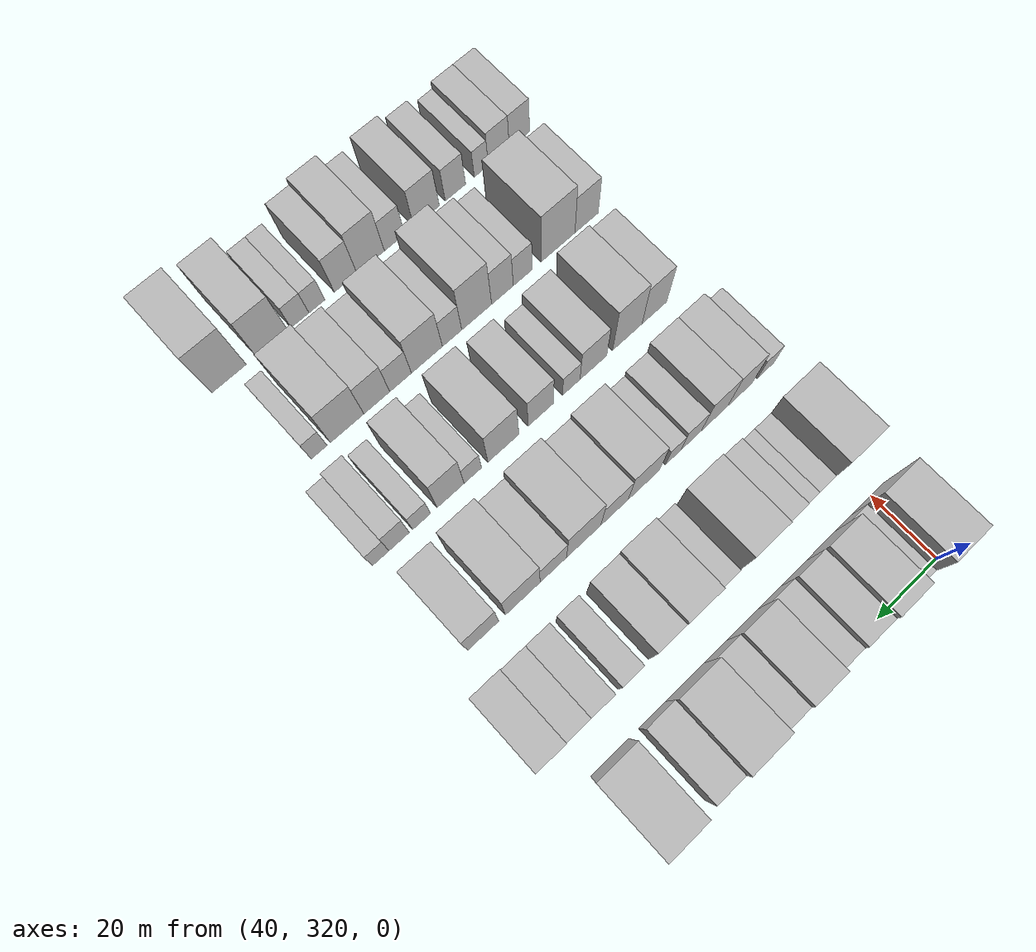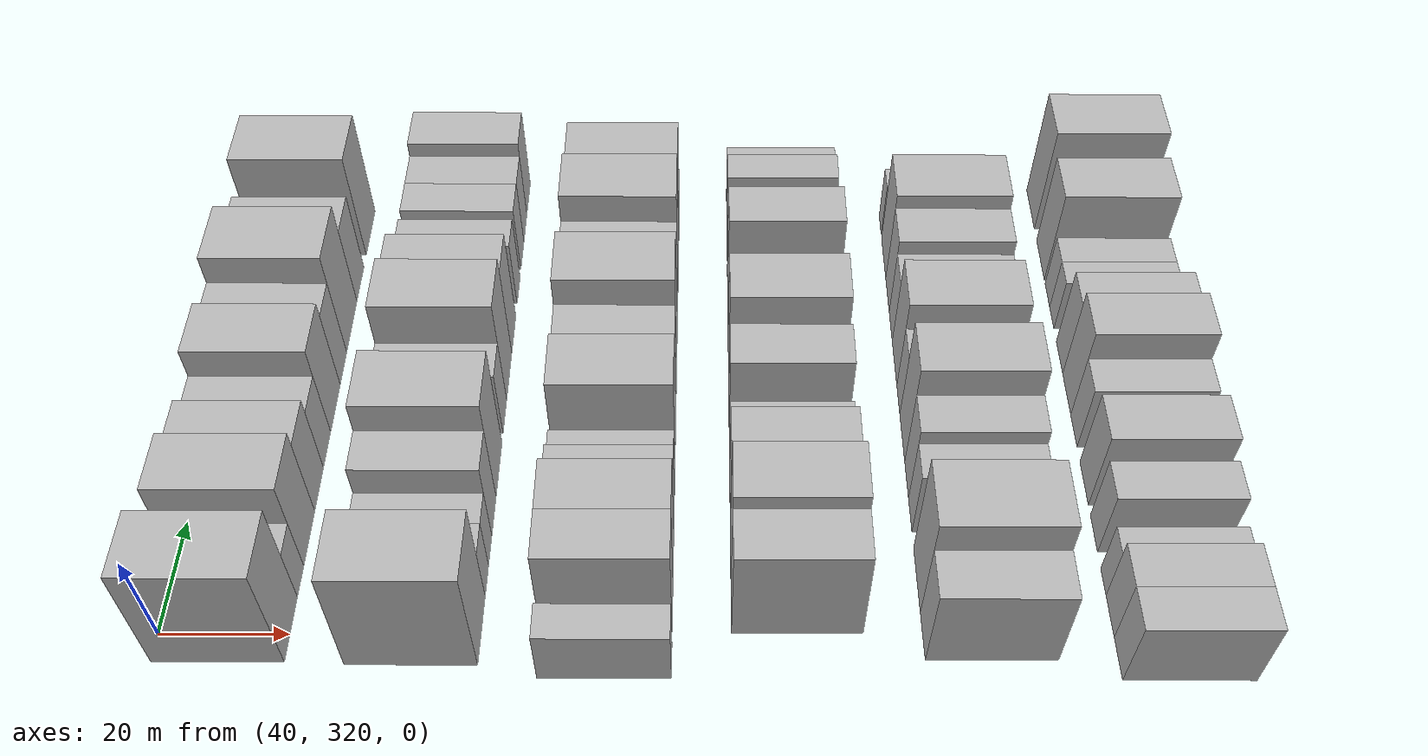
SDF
<sdf version="1.6">
 <world name="default">
  <model name="building_89">
   <static>1</static>
   <pose>50.0000 320.8935 0 0.000000 0.000000 0.000000</pose>
   <link name="link">
    <pose>0 0 12.00 0 0 0</pose>
    <collision name="collision"><geometry><box><size>20.0000 11.1456 24.0000</size></box></geometry></collision>
    <visual name="visual">
     <cast_shadows>0</cast_shadows>
     <geometry><box><size>20.0000 11.1456 24.0000</size></box></geometry>
     <material>
      <script>
       <uri>model://HANNAS_wall/materials/scripts</uri>
       <uri>model://HANNAS_wall/materials/textures</uri>
       <name>vrc/HANNAS_wall</name>
      </script>
     </material>
    </visual>
   </link>
  </model>
  <model name="building_90">
   <static>1</static>
   <pose>50.0000 329.2770 0 0.000000 0.000000 0.000000</pose>
   <link name="link">
    <pose>0 0 6.00 0 0 0</pose>
    <collision name="collision"><geometry><box><size>20.0000 5.6214 12.0000</size></box></geometry></collision>
    <visual name="visual">
     <cast_shadows>0</cast_shadows>
     <geometry><box><size>20.0000 5.6214 12.0000</size></box></geometry>
     <material>
      <script>
       <uri>model://HANNAS_wall/materials/scripts</uri>
       <uri>model://HANNAS_wall/materials/textures</uri>
       <name>vrc/HANNAS_wall</name>
      </script>
     </material>
    </visual>
   </link>
  </model>
  <model name="building_91">
   <static>1</static>
   <pose>50.0000 337.2113 0 0.000000 0.000000 0.000000</pose>
   <link name="link">
    <pose>0 0 10.50 0 0 0</pose>
    <collision name="collision"><geometry><box><size>20.0000 10.2472 21.0000</size></box></geometry></collision>
    <visual name="visual">
     <cast_shadows>0</cast_shadows>
     <geometry><box><size>20.0000 10.2472 21.0000</size></box></geometry>
     <material>
      <script>
       <uri>model://HANNAS_wall/materials/scripts</uri>
       <uri>model://HANNAS_wall/materials/textures</uri>
       <name>vrc/HANNAS_wall</name>
      </script>
     </material>
    </visual>
   </link>
  </model>
  <model name="building_92">
   <static>1</static>
   <pose>50.0000 346.6183 0 0.000000 0.000000 0.000000</pose>
   <link name="link">
    <pose>0 0 9.00 0 0 0</pose>
    <collision name="collision"><geometry><box><size>20.0000 8.5668 18.0000</size></box></geometry></collision>
    <visual name="visual">
     <cast_shadows>0</cast_shadows>
     <geometry><box><size>20.0000 8.5668 18.0000</size></box></geometry>
     <material>
      <script>
       <uri>model://HANNAS_wall/materials/scripts</uri>
       <uri>model://HANNAS_wall/materials/textures</uri>
       <name>vrc/HANNAS_wall</name>
      </script>
     </material>
    </visual>
   </link>
  </model>
  <model name="building_93">
   <static>1</static>
   <pose>50.0000 354.5552 0 0.000000 0.000000 0.000000</pose>
   <link name="link">
    <pose>0 0 7.50 0 0 0</pose>
    <collision name="collision"><geometry><box><size>20.0000 7.3070 15.0000</size></box></geometry></collision>
    <visual name="visual">
     <cast_shadows>0</cast_shadows>
     <geometry><box><size>20.0000 7.3070 15.0000</size></box></geometry>
     <material>
      <script>
       <uri>model://HANNAS_wall/materials/scripts</uri>
       <uri>model://HANNAS_wall/materials/textures</uri>
       <name>vrc/HANNAS_wall</name>
      </script>
     </material>
    </visual>
   </link>
  </model>
  <model name="building_94">
   <static>1</static>
   <pose>50.0000 363.2962 0 0.000000 0.000000 0.000000</pose>
   <link name="link">
    <pose>0 0 10.50 0 0 0</pose>
    <collision name="collision"><geometry><box><size>20.0000 10.1751 21.0000</size></box></geometry></collision>
    <visual name="visual">
     <cast_shadows>0</cast_shadows>
     <geometry><box><size>20.0000 10.1751 21.0000</size></box></geometry>
     <material>
      <script>
       <uri>model://HANNAS_wall/materials/scripts</uri>
       <uri>model://HANNAS_wall/materials/textures</uri>
       <name>vrc/HANNAS_wall</name>
      </script>
     </material>
    </visual>
   </link>
  </model>
  <model name="building_95">
   <static>1</static>
   <pose>50.0000 372.0166 0 0.000000 0.000000 0.000000</pose>
   <link name="link">
    <pose>0 0 9.00 0 0 0</pose>
    <collision name="collision"><geometry><box><size>20.0000 7.2658 18.0000</size></box></geometry></collision>
    <visual name="visual">
     <cast_shadows>0</cast_shadows>
     <geometry><box><size>20.0000 7.2658 18.0000</size></box></geometry>
     <material>
      <script>
       <uri>model://HANNAS_wall/materials/scripts</uri>
       <uri>model://HANNAS_wall/materials/textures</uri>
       <name>vrc/HANNAS_wall</name>
      </script>
     </material>
    </visual>
   </link>
  </model>
  <model name="building_96">
   <static>1</static>
   <pose>50.0000 381.6350 0 0.000000 0.000000 0.000000</pose>
   <link name="link">
    <pose>0 0 12.00 0 0 0</pose>
    <collision name="collision"><geometry><box><size>20.0000 11.9708 24.0000</size></box></geometry></collision>
    <visual name="visual">
     <cast_shadows>0</cast_shadows>
     <geometry><box><size>20.0000 11.9708 24.0000</size></box></geometry>
     <material>
      <script>
       <uri>model://HANNAS_wall/materials/scripts</uri>
       <uri>model://HANNAS_wall/materials/textures</uri>
       <name>vrc/HANNAS_wall</name>
      </script>
     </material>
    </visual>
   </link>
  </model>
  <model name="building_97">
   <static>1</static>
   <pose>50.0000 391.8477 0 0.000000 0.000000 0.000000</pose>
   <link name="link">
    <pose>0 0 9.00 0 0 0</pose>
    <collision name="collision"><geometry><box><size>20.0000 8.4546 18.0000</size></box></geometry></collision>
    <visual name="visual">
     <cast_shadows>0</cast_shadows>
     <geometry><box><size>20.0000 8.4546 18.0000</size></box></geometry>
     <material>
      <script>
       <uri>model://HANNAS_wall/materials/scripts</uri>
       <uri>model://HANNAS_wall/materials/textures</uri>
       <name>vrc/HANNAS_wall</name>
      </script>
     </material>
    </visual>
   </link>
  </model>
  <model name="building_98">
   <static>1</static>
   <pose>50.0000 404.8381 0 0.000000 0.000000 0.000000</pose>
   <link name="link">
    <pose>0 0 12.00 0 0 0</pose>
    <collision name="collision"><geometry><box><size>20.0000 11.5260 24.0000</size></box></geometry></collision>
    <visual name="visual">
     <cast_shadows>0</cast_shadows>
     <geometry><box><size>20.0000 11.5260 24.0000</size></box></geometry>
     <material>
      <script>
       <uri>model://HANNAS_wall/materials/scripts</uri>
       <uri>model://HANNAS_wall/materials/textures</uri>
       <name>vrc/HANNAS_wall</name>
      </script>
     </material>
    </visual>
   </link>
  </model>
  <model name="building_199">
   <static>1</static>
   <pose>79.0000 320.7788 0 0.000000 0.000000 0.000000</pose>
   <link name="link">
    <pose>0 0 12.00 0 0 0</pose>
    <collision name="collision"><geometry><box><size>20.0000 11.7832 24.0000</size></box></geometry></collision>
    <visual name="visual">
     <cast_shadows>0</cast_shadows>
     <geometry><box><size>20.0000 11.7832 24.0000</size></box></geometry>
     <material>
      <script>
       <uri>model://HANNAS_wall/materials/scripts</uri>
       <uri>model://HANNAS_wall/materials/textures</uri>
       <name>vrc/HANNAS_wall</name>
      </script>
     </material>
    </visual>
   </link>
  </model>
  <model name="building_200">
   <static>1</static>
   <pose>79.0000 329.4257 0 0.000000 0.000000 0.000000</pose>
   <link name="link">
    <pose>0 0 6.00 0 0 0</pose>
    <collision name="collision"><geometry><box><size>20.0000 5.5105 12.0000</size></box></geometry></collision>
    <visual name="visual">
     <cast_shadows>0</cast_shadows>
     <geometry><box><size>20.0000 5.5105 12.0000</size></box></geometry>
     <material>
      <script>
       <uri>model://HANNAS_wall/materials/scripts</uri>
       <uri>model://HANNAS_wall/materials/textures</uri>
       <name>vrc/HANNAS_wall</name>
      </script>
     </material>
    </visual>
   </link>
  </model>
  <model name="building_201">
   <static>1</static>
   <pose>79.0000 334.9611 0 0.000000 0.000000 0.000000</pose>
   <link name="link">
    <pose>0 0 6.00 0 0 0</pose>
    <collision name="collision"><geometry><box><size>20.0000 5.5604 12.0000</size></box></geometry></collision>
    <visual name="visual">
     <cast_shadows>0</cast_shadows>
     <geometry><box><size>20.0000 5.5604 12.0000</size></box></geometry>
     <material>
      <script>
       <uri>model://HANNAS_wall/materials/scripts</uri>
       <uri>model://HANNAS_wall/materials/textures</uri>
       <name>vrc/HANNAS_wall</name>
      </script>
     </material>
    </visual>
   </link>
  </model>
  <model name="building_202">
   <static>1</static>
   <pose>79.0000 341.4496 0 0.000000 0.000000 0.000000</pose>
   <link name="link">
    <pose>0 0 9.00 0 0 0</pose>
    <collision name="collision"><geometry><box><size>20.0000 7.4165 18.0000</size></box></geometry></collision>
    <visual name="visual">
     <cast_shadows>0</cast_shadows>
     <geometry><box><size>20.0000 7.4165 18.0000</size></box></geometry>
     <material>
      <script>
       <uri>model://HANNAS_wall/materials/scripts</uri>
       <uri>model://HANNAS_wall/materials/textures</uri>
       <name>vrc/HANNAS_wall</name>
      </script>
     </material>
    </visual>
   </link>
  </model>
  <model name="building_203">
   <static>1</static>
   <pose>79.0000 350.6185 0 0.000000 0.000000 0.000000</pose>
   <link name="link">
    <pose>0 0 12.00 0 0 0</pose>
    <collision name="collision"><geometry><box><size>20.0000 10.9213 24.0000</size></box></geometry></collision>
    <visual name="visual">
     <cast_shadows>0</cast_shadows>
     <geometry><box><size>20.0000 10.9213 24.0000</size></box></geometry>
     <material>
      <script>
       <uri>model://HANNAS_wall/materials/scripts</uri>
       <uri>model://HANNAS_wall/materials/textures</uri>
       <name>vrc/HANNAS_wall</name>
      </script>
     </material>
    </visual>
   </link>
  </model>
  <model name="building_204">
   <static>1</static>
   <pose>79.0000 361.6219 0 0.000000 0.000000 0.000000</pose>
   <link name="link">
    <pose>0 0 7.50 0 0 0</pose>
    <collision name="collision"><geometry><box><size>20.0000 7.0855 15.0000</size></box></geometry></collision>
    <visual name="visual">
     <cast_shadows>0</cast_shadows>
     <geometry><box><size>20.0000 7.0855 15.0000</size></box></geometry>
     <material>
      <script>
       <uri>model://HANNAS_wall/materials/scripts</uri>
       <uri>model://HANNAS_wall/materials/textures</uri>
       <name>vrc/HANNAS_wall</name>
      </script>
     </material>
    </visual>
   </link>
  </model>
  <model name="building_205">
   <static>1</static>
   <pose>79.0000 370.3661 0 0.000000 0.000000 0.000000</pose>
   <link name="link">
    <pose>0 0 12.00 0 0 0</pose>
    <collision name="collision"><geometry><box><size>20.0000 10.4029 24.0000</size></box></geometry></collision>
    <visual name="visual">
     <cast_shadows>0</cast_shadows>
     <geometry><box><size>20.0000 10.4029 24.0000</size></box></geometry>
     <material>
      <script>
       <uri>model://HANNAS_wall/materials/scripts</uri>
       <uri>model://HANNAS_wall/materials/textures</uri>
       <name>vrc/HANNAS_wall</name>
      </script>
     </material>
    </visual>
   </link>
  </model>
  <model name="building_206">
   <static>1</static>
   <pose>79.0000 379.8410 0 0.000000 0.000000 0.000000</pose>
   <link name="link">
    <pose>0 0 10.50 0 0 0</pose>
    <collision name="collision"><geometry><box><size>20.0000 8.5471 21.0000</size></box></geometry></collision>
    <visual name="visual">
     <cast_shadows>0</cast_shadows>
     <geometry><box><size>20.0000 8.5471 21.0000</size></box></geometry>
     <material>
      <script>
       <uri>model://HANNAS_wall/materials/scripts</uri>
       <uri>model://HANNAS_wall/materials/textures</uri>
       <name>vrc/HANNAS_wall</name>
      </script>
     </material>
    </visual>
   </link>
  </model>
  <model name="building_207">
   <static>1</static>
   <pose>79.0000 390.3539 0 0.000000 0.000000 0.000000</pose>
   <link name="link">
    <pose>0 0 7.50 0 0 0</pose>
    <collision name="collision"><geometry><box><size>20.0000 6.4786 15.0000</size></box></geometry></collision>
    <visual name="visual">
     <cast_shadows>0</cast_shadows>
     <geometry><box><size>20.0000 6.4786 15.0000</size></box></geometry>
     <material>
      <script>
       <uri>model://HANNAS_wall/materials/scripts</uri>
       <uri>model://HANNAS_wall/materials/textures</uri>
       <name>vrc/HANNAS_wall</name>
      </script>
     </material>
    </visual>
   </link>
  </model>
  <model name="building_208">
   <static>1</static>
   <pose>79.0000 399.0933 0 0.000000 0.000000 0.000000</pose>
   <link name="link">
    <pose>0 0 7.50 0 0 0</pose>
    <collision name="collision"><geometry><box><size>20.0000 7.0003 15.0000</size></box></geometry></collision>
    <visual name="visual">
     <cast_shadows>0</cast_shadows>
     <geometry><box><size>20.0000 7.0003 15.0000</size></box></geometry>
     <material>
      <script>
       <uri>model://HANNAS_wall/materials/scripts</uri>
       <uri>model://HANNAS_wall/materials/textures</uri>
       <name>vrc/HANNAS_wall</name>
      </script>
     </material>
    </visual>
   </link>
  </model>
  <model name="building_209">
   <static>1</static>
   <pose>79.0000 406.1514 0 0.000000 0.000000 0.000000</pose>
   <link name="link">
    <pose>0 0 7.50 0 0 0</pose>
    <collision name="collision"><geometry><box><size>20.0000 7.1159 15.0000</size></box></geometry></collision>
    <visual name="visual">
     <cast_shadows>0</cast_shadows>
     <geometry><box><size>20.0000 7.1159 15.0000</size></box></geometry>
     <material>
      <script>
       <uri>model://HANNAS_wall/materials/scripts</uri>
       <uri>model://HANNAS_wall/materials/textures</uri>
       <name>vrc/HANNAS_wall</name>
      </script>
     </material>
    </visual>
   </link>
  </model>
  <model name="building_210">
   <static>1</static>
   <pose>79.0000 414.0007 0 0.000000 0.000000 0.000000</pose>
   <link name="link">
    <pose>0 0 9.00 0 0 0</pose>
    <collision name="collision"><geometry><box><size>20.0000 8.5827 18.0000</size></box></geometry></collision>
    <visual name="visual">
     <cast_shadows>0</cast_shadows>
     <geometry><box><size>20.0000 8.5827 18.0000</size></box></geometry>
     <material>
      <script>
       <uri>model://HANNAS_wall/materials/scripts</uri>
       <uri>model://HANNAS_wall/materials/textures</uri>
       <name>vrc/HANNAS_wall</name>
      </script>
     </material>
    </visual>
   </link>
  </model>
  <model name="building_312">
   <static>1</static>
   <pose>108.0000 315.5880 0 0.000000 0.000000 0.000000</pose>
   <link name="link">
    <pose>0 0 6.00 0 0 0</pose>
    <collision name="collision"><geometry><box><size>20.0000 5.7659 12.0000</size></box></geometry></collision>
    <visual name="visual">
     <cast_shadows>0</cast_shadows>
     <geometry><box><size>20.0000 5.7659 12.0000</size></box></geometry>
     <material>
      <script>
       <uri>model://HANNAS_wall/materials/scripts</uri>
       <uri>model://HANNAS_wall/materials/textures</uri>
       <name>vrc/HANNAS_wall</name>
      </script>
     </material>
    </visual>
   </link>
  </model>
  <model name="building_313">
   <static>1</static>
   <pose>108.0000 324.6736 0 0.000000 0.000000 0.000000</pose>
   <link name="link">
    <pose>0 0 10.50 0 0 0</pose>
    <collision name="collision"><geometry><box><size>20.0000 8.4053 21.0000</size></box></geometry></collision>
    <visual name="visual">
     <cast_shadows>0</cast_shadows>
     <geometry><box><size>20.0000 8.4053 21.0000</size></box></geometry>
     <material>
      <script>
       <uri>model://HANNAS_wall/materials/scripts</uri>
       <uri>model://HANNAS_wall/materials/textures</uri>
       <name>vrc/HANNAS_wall</name>
      </script>
     </material>
    </visual>
   </link>
  </model>
  <model name="building_314">
   <static>1</static>
   <pose>108.0000 333.3585 0 0.000000 0.000000 0.000000</pose>
   <link name="link">
    <pose>0 0 10.50 0 0 0</pose>
    <collision name="collision"><geometry><box><size>20.0000 8.9645 21.0000</size></box></geometry></collision>
    <visual name="visual">
     <cast_shadows>0</cast_shadows>
     <geometry><box><size>20.0000 8.9645 21.0000</size></box></geometry>
     <material>
      <script>
       <uri>model://HANNAS_wall/materials/scripts</uri>
       <uri>model://HANNAS_wall/materials/textures</uri>
       <name>vrc/HANNAS_wall</name>
      </script>
     </material>
    </visual>
   </link>
  </model>
  <model name="building_315">
   <static>1</static>
   <pose>108.0000 341.2740 0 0.000000 0.000000 0.000000</pose>
   <link name="link">
    <pose>0 0 7.50 0 0 0</pose>
    <collision name="collision"><geometry><box><size>20.0000 6.8664 15.0000</size></box></geometry></collision>
    <visual name="visual">
     <cast_shadows>0</cast_shadows>
     <geometry><box><size>20.0000 6.8664 15.0000</size></box></geometry>
     <material>
      <script>
       <uri>model://HANNAS_wall/materials/scripts</uri>
       <uri>model://HANNAS_wall/materials/textures</uri>
       <name>vrc/HANNAS_wall</name>
      </script>
     </material>
    </visual>
   </link>
  </model>
  <model name="building_316">
   <static>1</static>
   <pose>108.0000 347.2473 0 0.000000 0.000000 0.000000</pose>
   <link name="link">
    <pose>0 0 6.00 0 0 0</pose>
    <collision name="collision"><geometry><box><size>20.0000 5.0802 12.0000</size></box></geometry></collision>
    <visual name="visual">
     <cast_shadows>0</cast_shadows>
     <geometry><box><size>20.0000 5.0802 12.0000</size></box></geometry>
     <material>
      <script>
       <uri>model://HANNAS_wall/materials/scripts</uri>
       <uri>model://HANNAS_wall/materials/textures</uri>
       <name>vrc/HANNAS_wall</name>
      </script>
     </material>
    </visual>
   </link>
  </model>
  <model name="building_317">
   <static>1</static>
   <pose>108.0000 356.9504 0 0.000000 0.000000 0.000000</pose>
   <link name="link">
    <pose>0 0 10.50 0 0 0</pose>
    <collision name="collision"><geometry><box><size>20.0000 10.3261 21.0000</size></box></geometry></collision>
    <visual name="visual">
     <cast_shadows>0</cast_shadows>
     <geometry><box><size>20.0000 10.3261 21.0000</size></box></geometry>
     <material>
      <script>
       <uri>model://HANNAS_wall/materials/scripts</uri>
       <uri>model://HANNAS_wall/materials/textures</uri>
       <name>vrc/HANNAS_wall</name>
      </script>
     </material>
    </visual>
   </link>
  </model>
  <model name="building_318">
   <static>1</static>
   <pose>108.0000 366.5390 0 0.000000 0.000000 0.000000</pose>
   <link name="link">
    <pose>0 0 9.00 0 0 0</pose>
    <collision name="collision"><geometry><box><size>20.0000 8.8510 18.0000</size></box></geometry></collision>
    <visual name="visual">
     <cast_shadows>0</cast_shadows>
     <geometry><box><size>20.0000 8.8510 18.0000</size></box></geometry>
     <material>
      <script>
       <uri>model://HANNAS_wall/materials/scripts</uri>
       <uri>model://HANNAS_wall/materials/textures</uri>
       <name>vrc/HANNAS_wall</name>
      </script>
     </material>
    </visual>
   </link>
  </model>
  <model name="building_319">
   <static>1</static>
   <pose>108.0000 376.4146 0 0.000000 0.000000 0.000000</pose>
   <link name="link">
    <pose>0 0 12.00 0 0 0</pose>
    <collision name="collision"><geometry><box><size>20.0000 10.9003 24.0000</size></box></geometry></collision>
    <visual name="visual">
     <cast_shadows>0</cast_shadows>
     <geometry><box><size>20.0000 10.9003 24.0000</size></box></geometry>
     <material>
      <script>
       <uri>model://HANNAS_wall/materials/scripts</uri>
       <uri>model://HANNAS_wall/materials/textures</uri>
       <name>vrc/HANNAS_wall</name>
      </script>
     </material>
    </visual>
   </link>
  </model>
  <model name="building_320">
   <static>1</static>
   <pose>108.0000 385.9940 0 0.000000 0.000000 0.000000</pose>
   <link name="link">
    <pose>0 0 9.00 0 0 0</pose>
    <collision name="collision"><geometry><box><size>20.0000 8.2584 18.0000</size></box></geometry></collision>
    <visual name="visual">
     <cast_shadows>0</cast_shadows>
     <geometry><box><size>20.0000 8.2584 18.0000</size></box></geometry>
     <material>
      <script>
       <uri>model://HANNAS_wall/materials/scripts</uri>
       <uri>model://HANNAS_wall/materials/textures</uri>
       <name>vrc/HANNAS_wall</name>
      </script>
     </material>
    </visual>
   </link>
  </model>
  <model name="building_321">
   <static>1</static>
   <pose>108.0000 395.4606 0 0.000000 0.000000 0.000000</pose>
   <link name="link">
    <pose>0 0 12.00 0 0 0</pose>
    <collision name="collision"><geometry><box><size>20.0000 10.6748 24.0000</size></box></geometry></collision>
    <visual name="visual">
     <cast_shadows>0</cast_shadows>
     <geometry><box><size>20.0000 10.6748 24.0000</size></box></geometry>
     <material>
      <script>
       <uri>model://HANNAS_wall/materials/scripts</uri>
       <uri>model://HANNAS_wall/materials/textures</uri>
       <name>vrc/HANNAS_wall</name>
      </script>
     </material>
    </visual>
   </link>
  </model>
  <model name="building_322">
   <static>1</static>
   <pose>108.0000 407.4768 0 0.000000 0.000000 0.000000</pose>
   <link name="link">
    <pose>0 0 10.50 0 0 0</pose>
    <collision name="collision"><geometry><box><size>20.0000 9.3574 21.0000</size></box></geometry></collision>
    <visual name="visual">
     <cast_shadows>0</cast_shadows>
     <geometry><box><size>20.0000 9.3574 21.0000</size></box></geometry>
     <material>
      <script>
       <uri>model://HANNAS_wall/materials/scripts</uri>
       <uri>model://HANNAS_wall/materials/textures</uri>
       <name>vrc/HANNAS_wall</name>
      </script>
     </material>
    </visual>
   </link>
  </model>
  <model name="building_424">
   <static>1</static>
   <pose>137.0000 324.6514 0 0.000000 0.000000 0.000000</pose>
   <link name="link">
    <pose>0 0 10.50 0 0 0</pose>
    <collision name="collision"><geometry><box><size>20.0000 8.5462 21.0000</size></box></geometry></collision>
    <visual name="visual">
     <cast_shadows>0</cast_shadows>
     <geometry><box><size>20.0000 8.5462 21.0000</size></box></geometry>
     <material>
      <script>
       <uri>model://HANNAS_wall/materials/scripts</uri>
       <uri>model://HANNAS_wall/materials/textures</uri>
       <name>vrc/HANNAS_wall</name>
      </script>
     </material>
    </visual>
   </link>
  </model>
  <model name="building_425">
   <static>1</static>
   <pose>137.0000 333.9251 0 0.000000 0.000000 0.000000</pose>
   <link name="link">
    <pose>0 0 12.00 0 0 0</pose>
    <collision name="collision"><geometry><box><size>20.0000 10.0012 24.0000</size></box></geometry></collision>
    <visual name="visual">
     <cast_shadows>0</cast_shadows>
     <geometry><box><size>20.0000 10.0012 24.0000</size></box></geometry>
     <material>
      <script>
       <uri>model://HANNAS_wall/materials/scripts</uri>
       <uri>model://HANNAS_wall/materials/textures</uri>
       <name>vrc/HANNAS_wall</name>
      </script>
     </material>
    </visual>
   </link>
  </model>
  <model name="building_426">
   <static>1</static>
   <pose>137.0000 345.4109 0 0.000000 0.000000 0.000000</pose>
   <link name="link">
    <pose>0 0 9.00 0 0 0</pose>
    <collision name="collision"><geometry><box><size>20.0000 8.9703 18.0000</size></box></geometry></collision>
    <visual name="visual">
     <cast_shadows>0</cast_shadows>
     <geometry><box><size>20.0000 8.9703 18.0000</size></box></geometry>
     <material>
      <script>
       <uri>model://HANNAS_wall/materials/scripts</uri>
       <uri>model://HANNAS_wall/materials/textures</uri>
       <name>vrc/HANNAS_wall</name>
      </script>
     </material>
    </visual>
   </link>
  </model>
  <model name="building_427">
   <static>1</static>
   <pose>137.0000 352.7751 0 0.000000 0.000000 0.000000</pose>
   <link name="link">
    <pose>0 0 6.00 0 0 0</pose>
    <collision name="collision"><geometry><box><size>20.0000 5.7582 12.0000</size></box></geometry></collision>
    <visual name="visual">
     <cast_shadows>0</cast_shadows>
     <geometry><box><size>20.0000 5.7582 12.0000</size></box></geometry>
     <material>
      <script>
       <uri>model://HANNAS_wall/materials/scripts</uri>
       <uri>model://HANNAS_wall/materials/textures</uri>
       <name>vrc/HANNAS_wall</name>
      </script>
     </material>
    </visual>
   </link>
  </model>
  <model name="building_428">
   <static>1</static>
   <pose>137.0000 362.7721 0 0.000000 0.000000 0.000000</pose>
   <link name="link">
    <pose>0 0 9.00 0 0 0</pose>
    <collision name="collision"><geometry><box><size>20.0000 8.2357 18.0000</size></box></geometry></collision>
    <visual name="visual">
     <cast_shadows>0</cast_shadows>
     <geometry><box><size>20.0000 8.2357 18.0000</size></box></geometry>
     <material>
      <script>
       <uri>model://HANNAS_wall/materials/scripts</uri>
       <uri>model://HANNAS_wall/materials/textures</uri>
       <name>vrc/HANNAS_wall</name>
      </script>
     </material>
    </visual>
   </link>
  </model>
  <model name="building_429">
   <static>1</static>
   <pose>137.0000 374.8511 0 0.000000 0.000000 0.000000</pose>
   <link name="link">
    <pose>0 0 10.50 0 0 0</pose>
    <collision name="collision"><geometry><box><size>20.0000 9.9223 21.0000</size></box></geometry></collision>
    <visual name="visual">
     <cast_shadows>0</cast_shadows>
     <geometry><box><size>20.0000 9.9223 21.0000</size></box></geometry>
     <material>
      <script>
       <uri>model://HANNAS_wall/materials/scripts</uri>
       <uri>model://HANNAS_wall/materials/textures</uri>
       <name>vrc/HANNAS_wall</name>
      </script>
     </material>
    </visual>
   </link>
  </model>
  <model name="building_430">
   <static>1</static>
   <pose>137.0000 384.5609 0 0.000000 0.000000 0.000000</pose>
   <link name="link">
    <pose>0 0 6.00 0 0 0</pose>
    <collision name="collision"><geometry><box><size>20.0000 5.4973 12.0000</size></box></geometry></collision>
    <visual name="visual">
     <cast_shadows>0</cast_shadows>
     <geometry><box><size>20.0000 5.4973 12.0000</size></box></geometry>
     <material>
      <script>
       <uri>model://HANNAS_wall/materials/scripts</uri>
       <uri>model://HANNAS_wall/materials/textures</uri>
       <name>vrc/HANNAS_wall</name>
      </script>
     </material>
    </visual>
   </link>
  </model>
  <model name="building_431">
   <static>1</static>
   <pose>137.0000 391.5172 0 0.000000 0.000000 0.000000</pose>
   <link name="link">
    <pose>0 0 10.50 0 0 0</pose>
    <collision name="collision"><geometry><box><size>20.0000 8.4152 21.0000</size></box></geometry></collision>
    <visual name="visual">
     <cast_shadows>0</cast_shadows>
     <geometry><box><size>20.0000 8.4152 21.0000</size></box></geometry>
     <material>
      <script>
       <uri>model://HANNAS_wall/materials/scripts</uri>
       <uri>model://HANNAS_wall/materials/textures</uri>
       <name>vrc/HANNAS_wall</name>
      </script>
     </material>
    </visual>
   </link>
  </model>
  <model name="building_432">
   <static>1</static>
   <pose>137.0000 400.4879 0 0.000000 0.000000 0.000000</pose>
   <link name="link">
    <pose>0 0 6.00 0 0 0</pose>
    <collision name="collision"><geometry><box><size>20.0000 5.5262 12.0000</size></box></geometry></collision>
    <visual name="visual">
     <cast_shadows>0</cast_shadows>
     <geometry><box><size>20.0000 5.5262 12.0000</size></box></geometry>
     <material>
      <script>
       <uri>model://HANNAS_wall/materials/scripts</uri>
       <uri>model://HANNAS_wall/materials/textures</uri>
       <name>vrc/HANNAS_wall</name>
      </script>
     </material>
    </visual>
   </link>
  </model>
  <model name="building_433">
   <static>1</static>
   <pose>137.0000 407.3370 0 0.000000 0.000000 0.000000</pose>
   <link name="link">
    <pose>0 0 7.50 0 0 0</pose>
    <collision name="collision"><geometry><box><size>20.0000 6.1721 15.0000</size></box></geometry></collision>
    <visual name="visual">
     <cast_shadows>0</cast_shadows>
     <geometry><box><size>20.0000 6.1721 15.0000</size></box></geometry>
     <material>
      <script>
       <uri>model://HANNAS_wall/materials/scripts</uri>
       <uri>model://HANNAS_wall/materials/textures</uri>
       <name>vrc/HANNAS_wall</name>
      </script>
     </material>
    </visual>
   </link>
  </model>
  <model name="building_434">
   <static>1</static>
   <pose>137.0000 412.9171 0 0.000000 0.000000 0.000000</pose>
   <link name="link">
    <pose>0 0 6.00 0 0 0</pose>
    <collision name="collision"><geometry><box><size>20.0000 4.9881 12.0000</size></box></geometry></collision>
    <visual name="visual">
     <cast_shadows>0</cast_shadows>
     <geometry><box><size>20.0000 4.9881 12.0000</size></box></geometry>
     <material>
      <script>
       <uri>model://HANNAS_wall/materials/scripts</uri>
       <uri>model://HANNAS_wall/materials/textures</uri>
       <name>vrc/HANNAS_wall</name>
      </script>
     </material>
    </visual>
   </link>
  </model>
  <model name="building_535">
   <static>1</static>
   <pose>166.0000 319.8788 0 0.000000 0.000000 0.000000</pose>
   <link name="link">
    <pose>0 0 9.00 0 0 0</pose>
    <collision name="collision"><geometry><box><size>20.0000 8.0908 18.0000</size></box></geometry></collision>
    <visual name="visual">
     <cast_shadows>0</cast_shadows>
     <geometry><box><size>20.0000 8.0908 18.0000</size></box></geometry>
     <material>
      <script>
       <uri>model://HANNAS_wall/materials/scripts</uri>
       <uri>model://HANNAS_wall/materials/textures</uri>
       <name>vrc/HANNAS_wall</name>
      </script>
     </material>
    </visual>
   </link>
  </model>
  <model name="building_536">
   <static>1</static>
   <pose>166.0000 329.7574 0 0.000000 0.000000 0.000000</pose>
   <link name="link">
    <pose>0 0 12.00 0 0 0</pose>
    <collision name="collision"><geometry><box><size>20.0000 11.6663 24.0000</size></box></geometry></collision>
    <visual name="visual">
     <cast_shadows>0</cast_shadows>
     <geometry><box><size>20.0000 11.6663 24.0000</size></box></geometry>
     <material>
      <script>
       <uri>model://HANNAS_wall/materials/scripts</uri>
       <uri>model://HANNAS_wall/materials/textures</uri>
       <name>vrc/HANNAS_wall</name>
      </script>
     </material>
    </visual>
   </link>
  </model>
  <model name="building_537">
   <static>1</static>
   <pose>166.0000 341.7933 0 0.000000 0.000000 0.000000</pose>
   <link name="link">
    <pose>0 0 7.50 0 0 0</pose>
    <collision name="collision"><geometry><box><size>20.0000 6.4056 15.0000</size></box></geometry></collision>
    <visual name="visual">
     <cast_shadows>0</cast_shadows>
     <geometry><box><size>20.0000 6.4056 15.0000</size></box></geometry>
     <material>
      <script>
       <uri>model://HANNAS_wall/materials/scripts</uri>
       <uri>model://HANNAS_wall/materials/textures</uri>
       <name>vrc/HANNAS_wall</name>
      </script>
     </material>
    </visual>
   </link>
  </model>
  <model name="building_538">
   <static>1</static>
   <pose>166.0000 348.6195 0 0.000000 0.000000 0.000000</pose>
   <link name="link">
    <pose>0 0 9.00 0 0 0</pose>
    <collision name="collision"><geometry><box><size>20.0000 7.2467 18.0000</size></box></geometry></collision>
    <visual name="visual">
     <cast_shadows>0</cast_shadows>
     <geometry><box><size>20.0000 7.2467 18.0000</size></box></geometry>
     <material>
      <script>
       <uri>model://HANNAS_wall/materials/scripts</uri>
       <uri>model://HANNAS_wall/materials/textures</uri>
       <name>vrc/HANNAS_wall</name>
      </script>
     </material>
    </visual>
   </link>
  </model>
  <model name="building_539">
   <static>1</static>
   <pose>166.0000 357.1756 0 0.000000 0.000000 0.000000</pose>
   <link name="link">
    <pose>0 0 12.00 0 0 0</pose>
    <collision name="collision"><geometry><box><size>20.0000 9.8655 24.0000</size></box></geometry></collision>
    <visual name="visual">
     <cast_shadows>0</cast_shadows>
     <geometry><box><size>20.0000 9.8655 24.0000</size></box></geometry>
     <material>
      <script>
       <uri>model://HANNAS_wall/materials/scripts</uri>
       <uri>model://HANNAS_wall/materials/textures</uri>
       <name>vrc/HANNAS_wall</name>
      </script>
     </material>
    </visual>
   </link>
  </model>
  <model name="building_540">
   <static>1</static>
   <pose>166.0000 365.2536 0 0.000000 0.000000 0.000000</pose>
   <link name="link">
    <pose>0 0 7.50 0 0 0</pose>
    <collision name="collision"><geometry><box><size>20.0000 6.2904 15.0000</size></box></geometry></collision>
    <visual name="visual">
     <cast_shadows>0</cast_shadows>
     <geometry><box><size>20.0000 6.2904 15.0000</size></box></geometry>
     <material>
      <script>
       <uri>model://HANNAS_wall/materials/scripts</uri>
       <uri>model://HANNAS_wall/materials/textures</uri>
       <name>vrc/HANNAS_wall</name>
      </script>
     </material>
    </visual>
   </link>
  </model>
  <model name="building_541">
   <static>1</static>
   <pose>166.0000 373.3911 0 0.000000 0.000000 0.000000</pose>
   <link name="link">
    <pose>0 0 10.50 0 0 0</pose>
    <collision name="collision"><geometry><box><size>20.0000 9.9847 21.0000</size></box></geometry></collision>
    <visual name="visual">
     <cast_shadows>0</cast_shadows>
     <geometry><box><size>20.0000 9.9847 21.0000</size></box></geometry>
     <material>
      <script>
       <uri>model://HANNAS_wall/materials/scripts</uri>
       <uri>model://HANNAS_wall/materials/textures</uri>
       <name>vrc/HANNAS_wall</name>
      </script>
     </material>
    </visual>
   </link>
  </model>
  <model name="building_542">
   <static>1</static>
   <pose>166.0000 381.8405 0 0.000000 0.000000 0.000000</pose>
   <link name="link">
    <pose>0 0 7.50 0 0 0</pose>
    <collision name="collision"><geometry><box><size>20.0000 6.9141 15.0000</size></box></geometry></collision>
    <visual name="visual">
     <cast_shadows>0</cast_shadows>
     <geometry><box><size>20.0000 6.9141 15.0000</size></box></geometry>
     <material>
      <script>
       <uri>model://HANNAS_wall/materials/scripts</uri>
       <uri>model://HANNAS_wall/materials/textures</uri>
       <name>vrc/HANNAS_wall</name>
      </script>
     </material>
    </visual>
   </link>
  </model>
  <model name="building_543">
   <static>1</static>
   <pose>166.0000 389.3541 0 0.000000 0.000000 0.000000</pose>
   <link name="link">
    <pose>0 0 9.00 0 0 0</pose>
    <collision name="collision"><geometry><box><size>20.0000 8.1130 18.0000</size></box></geometry></collision>
    <visual name="visual">
     <cast_shadows>0</cast_shadows>
     <geometry><box><size>20.0000 8.1130 18.0000</size></box></geometry>
     <material>
      <script>
       <uri>model://HANNAS_wall/materials/scripts</uri>
       <uri>model://HANNAS_wall/materials/textures</uri>
       <name>vrc/HANNAS_wall</name>
      </script>
     </material>
    </visual>
   </link>
  </model>
  <model name="building_544">
   <static>1</static>
   <pose>166.0000 398.6031 0 0.000000 0.000000 0.000000</pose>
   <link name="link">
    <pose>0 0 10.50 0 0 0</pose>
    <collision name="collision"><geometry><box><size>20.0000 10.3851 21.0000</size></box></geometry></collision>
    <visual name="visual">
     <cast_shadows>0</cast_shadows>
     <geometry><box><size>20.0000 10.3851 21.0000</size></box></geometry>
     <material>
      <script>
       <uri>model://HANNAS_wall/materials/scripts</uri>
       <uri>model://HANNAS_wall/materials/textures</uri>
       <name>vrc/HANNAS_wall</name>
      </script>
     </material>
    </visual>
   </link>
  </model>
  <model name="building_545">
   <static>1</static>
   <pose>166.0000 407.2174 0 0.000000 0.000000 0.000000</pose>
   <link name="link">
    <pose>0 0 6.00 0 0 0</pose>
    <collision name="collision"><geometry><box><size>20.0000 4.8436 12.0000</size></box></geometry></collision>
    <visual name="visual">
     <cast_shadows>0</cast_shadows>
     <geometry><box><size>20.0000 4.8436 12.0000</size></box></geometry>
     <material>
      <script>
       <uri>model://HANNAS_wall/materials/scripts</uri>
       <uri>model://HANNAS_wall/materials/textures</uri>
       <name>vrc/HANNAS_wall</name>
      </script>
     </material>
    </visual>
   </link>
  </model>
  <model name="building_657">
   <static>1</static>
   <pose>195.0000 316.1642 0 0.000000 0.000000 0.000000</pose>
   <link name="link">
    <pose>0 0 7.50 0 0 0</pose>
    <collision name="collision"><geometry><box><size>20.0000 7.1180 15.0000</size></box></geometry></collision>
    <visual name="visual">
     <cast_shadows>0</cast_shadows>
     <geometry><box><size>20.0000 7.1180 15.0000</size></box></geometry>
     <material>
      <script>
       <uri>model://HANNAS_wall/materials/scripts</uri>
       <uri>model://HANNAS_wall/materials/textures</uri>
       <name>vrc/HANNAS_wall</name>
      </script>
     </material>
    </visual>
   </link>
  </model>
  <model name="building_658">
   <static>1</static>
   <pose>195.0000 323.3672 0 0.000000 0.000000 0.000000</pose>
   <link name="link">
    <pose>0 0 7.50 0 0 0</pose>
    <collision name="collision"><geometry><box><size>20.0000 7.2879 15.0000</size></box></geometry></collision>
    <visual name="visual">
     <cast_shadows>0</cast_shadows>
     <geometry><box><size>20.0000 7.2879 15.0000</size></box></geometry>
     <material>
      <script>
       <uri>model://HANNAS_wall/materials/scripts</uri>
       <uri>model://HANNAS_wall/materials/textures</uri>
       <name>vrc/HANNAS_wall</name>
      </script>
     </material>
    </visual>
   </link>
  </model>
  <model name="building_659">
   <static>1</static>
   <pose>195.0000 329.4377 0 0.000000 0.000000 0.000000</pose>
   <link name="link">
    <pose>0 0 6.00 0 0 0</pose>
    <collision name="collision"><geometry><box><size>20.0000 4.8531 12.0000</size></box></geometry></collision>
    <visual name="visual">
     <cast_shadows>0</cast_shadows>
     <geometry><box><size>20.0000 4.8531 12.0000</size></box></geometry>
     <material>
      <script>
       <uri>model://HANNAS_wall/materials/scripts</uri>
       <uri>model://HANNAS_wall/materials/textures</uri>
       <name>vrc/HANNAS_wall</name>
      </script>
     </material>
    </visual>
   </link>
  </model>
  <model name="building_660">
   <static>1</static>
   <pose>195.0000 338.3266 0 0.000000 0.000000 0.000000</pose>
   <link name="link">
    <pose>0 0 7.50 0 0 0</pose>
    <collision name="collision"><geometry><box><size>20.0000 6.9248 15.0000</size></box></geometry></collision>
    <visual name="visual">
     <cast_shadows>0</cast_shadows>
     <geometry><box><size>20.0000 6.9248 15.0000</size></box></geometry>
     <material>
      <script>
       <uri>model://HANNAS_wall/materials/scripts</uri>
       <uri>model://HANNAS_wall/materials/textures</uri>
       <name>vrc/HANNAS_wall</name>
      </script>
     </material>
    </visual>
   </link>
  </model>
  <model name="building_661">
   <static>1</static>
   <pose>195.0000 348.0875 0 0.000000 0.000000 0.000000</pose>
   <link name="link">
    <pose>0 0 9.00 0 0 0</pose>
    <collision name="collision"><geometry><box><size>20.0000 8.5970 18.0000</size></box></geometry></collision>
    <visual name="visual">
     <cast_shadows>0</cast_shadows>
     <geometry><box><size>20.0000 8.5970 18.0000</size></box></geometry>
     <material>
      <script>
       <uri>model://HANNAS_wall/materials/scripts</uri>
       <uri>model://HANNAS_wall/materials/textures</uri>
       <name>vrc/HANNAS_wall</name>
      </script>
     </material>
    </visual>
   </link>
  </model>
  <model name="building_662">
   <static>1</static>
   <pose>195.0000 358.7450 0 0.000000 0.000000 0.000000</pose>
   <link name="link">
    <pose>0 0 7.50 0 0 0</pose>
    <collision name="collision"><geometry><box><size>20.0000 6.7180 15.0000</size></box></geometry></collision>
    <visual name="visual">
     <cast_shadows>0</cast_shadows>
     <geometry><box><size>20.0000 6.7180 15.0000</size></box></geometry>
     <material>
      <script>
       <uri>model://HANNAS_wall/materials/scripts</uri>
       <uri>model://HANNAS_wall/materials/textures</uri>
       <name>vrc/HANNAS_wall</name>
      </script>
     </material>
    </visual>
   </link>
  </model>
  <model name="building_663">
   <static>1</static>
   <pose>195.0000 366.5918 0 0.000000 0.000000 0.000000</pose>
   <link name="link">
    <pose>0 0 10.50 0 0 0</pose>
    <collision name="collision"><geometry><box><size>20.0000 8.9756 21.0000</size></box></geometry></collision>
    <visual name="visual">
     <cast_shadows>0</cast_shadows>
     <geometry><box><size>20.0000 8.9756 21.0000</size></box></geometry>
     <material>
      <script>
       <uri>model://HANNAS_wall/materials/scripts</uri>
       <uri>model://HANNAS_wall/materials/textures</uri>
       <name>vrc/HANNAS_wall</name>
      </script>
     </material>
    </visual>
   </link>
  </model>
  <model name="building_664">
   <static>1</static>
   <pose>195.0000 374.7418 0 0.000000 0.000000 0.000000</pose>
   <link name="link">
    <pose>0 0 9.00 0 0 0</pose>
    <collision name="collision"><geometry><box><size>20.0000 7.3244 18.0000</size></box></geometry></collision>
    <visual name="visual">
     <cast_shadows>0</cast_shadows>
     <geometry><box><size>20.0000 7.3244 18.0000</size></box></geometry>
     <material>
      <script>
       <uri>model://HANNAS_wall/materials/scripts</uri>
       <uri>model://HANNAS_wall/materials/textures</uri>
       <name>vrc/HANNAS_wall</name>
      </script>
     </material>
    </visual>
   </link>
  </model>
  <model name="building_665">
   <static>1</static>
   <pose>195.0000 383.9461 0 0.000000 0.000000 0.000000</pose>
   <link name="link">
    <pose>0 0 6.00 0 0 0</pose>
    <collision name="collision"><geometry><box><size>20.0000 5.0843 12.0000</size></box></geometry></collision>
    <visual name="visual">
     <cast_shadows>0</cast_shadows>
     <geometry><box><size>20.0000 5.0843 12.0000</size></box></geometry>
     <material>
      <script>
       <uri>model://HANNAS_wall/materials/scripts</uri>
       <uri>model://HANNAS_wall/materials/textures</uri>
       <name>vrc/HANNAS_wall</name>
      </script>
     </material>
    </visual>
   </link>
  </model>
  <model name="building_666">
   <static>1</static>
   <pose>195.0000 389.3330 0 0.000000 0.000000 0.000000</pose>
   <link name="link">
    <pose>0 0 6.00 0 0 0</pose>
    <collision name="collision"><geometry><box><size>20.0000 5.6895 12.0000</size></box></geometry></collision>
    <visual name="visual">
     <cast_shadows>0</cast_shadows>
     <geometry><box><size>20.0000 5.6895 12.0000</size></box></geometry>
     <material>
      <script>
       <uri>model://HANNAS_wall/materials/scripts</uri>
       <uri>model://HANNAS_wall/materials/textures</uri>
       <name>vrc/HANNAS_wall</name>
      </script>
     </material>
    </visual>
   </link>
  </model>
  <model name="building_667">
   <static>1</static>
   <pose>195.0000 398.1374 0 0.000000 0.000000 0.000000</pose>
   <link name="link">
    <pose>0 0 10.50 0 0 0</pose>
    <collision name="collision"><geometry><box><size>20.0000 9.9191 21.0000</size></box></geometry></collision>
    <visual name="visual">
     <cast_shadows>0</cast_shadows>
     <geometry><box><size>20.0000 9.9191 21.0000</size></box></geometry>
     <material>
      <script>
       <uri>model://HANNAS_wall/materials/scripts</uri>
       <uri>model://HANNAS_wall/materials/textures</uri>
       <name>vrc/HANNAS_wall</name>
      </script>
     </material>
    </visual>
   </link>
  </model>
  <model name="building_668">
   <static>1</static>
   <pose>195.0000 411.3340 0 0.000000 0.000000 0.000000</pose>
   <link name="link">
    <pose>0 0 12.00 0 0 0</pose>
    <collision name="collision"><geometry><box><size>20.0000 10.4743 24.0000</size></box></geometry></collision>
    <visual name="visual">
     <cast_shadows>0</cast_shadows>
     <geometry><box><size>20.0000 10.4743 24.0000</size></box></geometry>
     <material>
      <script>
       <uri>model://HANNAS_wall/materials/scripts</uri>
       <uri>model://HANNAS_wall/materials/textures</uri>
       <name>vrc/HANNAS_wall</name>
      </script>
     </material>
    </visual>
   </link>
  </model>
 </world>
</sdf>
